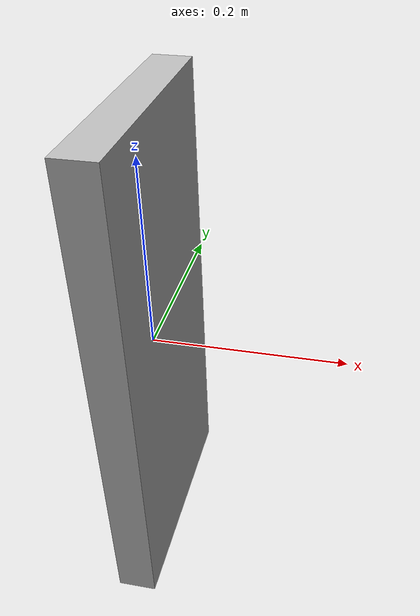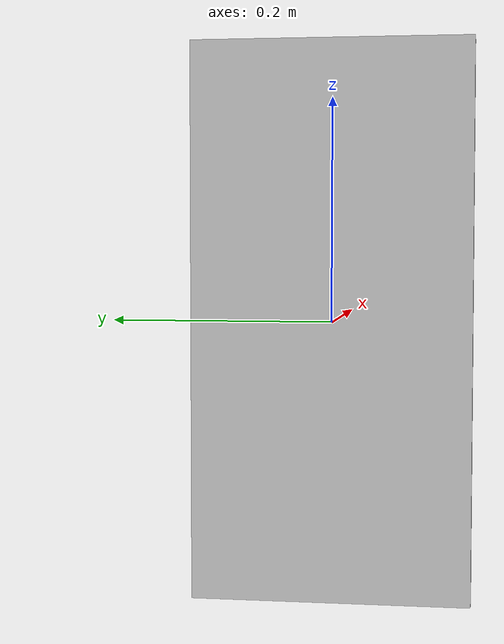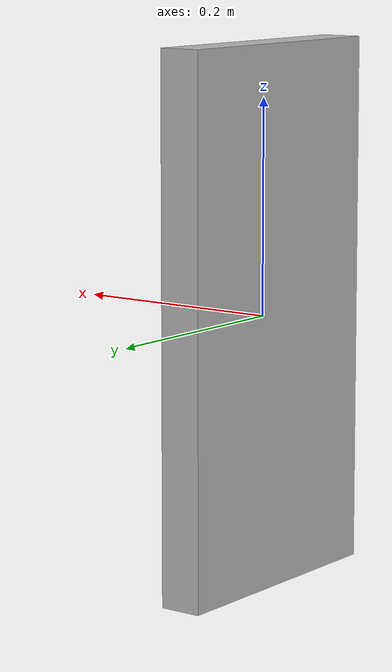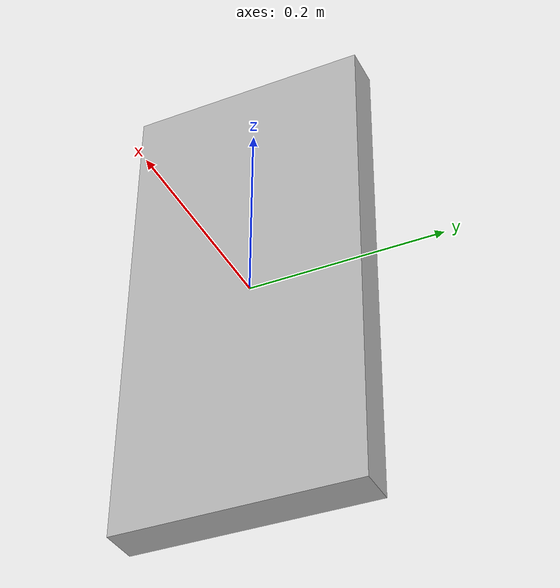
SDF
<?xml version="1.0"?>
<sdf version="1.4">
  <model name="fire_extinguisher_1">
    <pose>0 0 0 0 0 0</pose>
    <static>true</static>
    <link name="fire_extinguisher_1_link">
      <visual name="fire_extinguisher_1_visual">
        <pose>0 0 0 0 0 0</pose>
        <geometry>
          <mesh>
            <uri>model://fire_extinguisher_1/meshes/fire_extinguisher_1.dae</uri>
          </mesh>
        </geometry>
      </visual>
    </link>
  </model>
</sdf>
